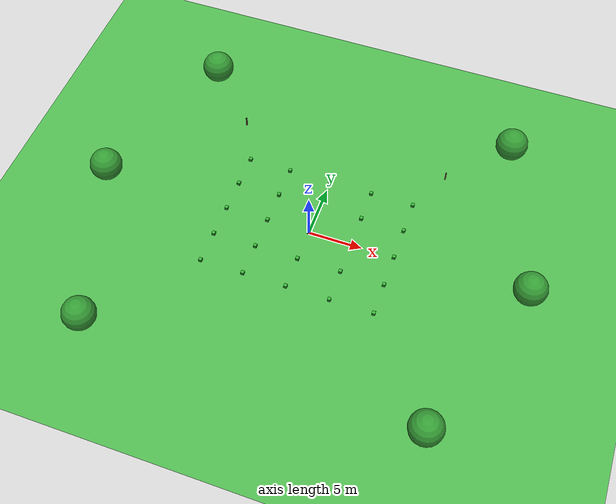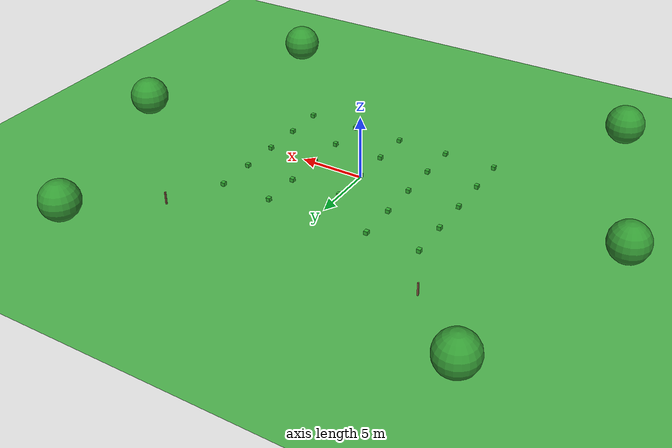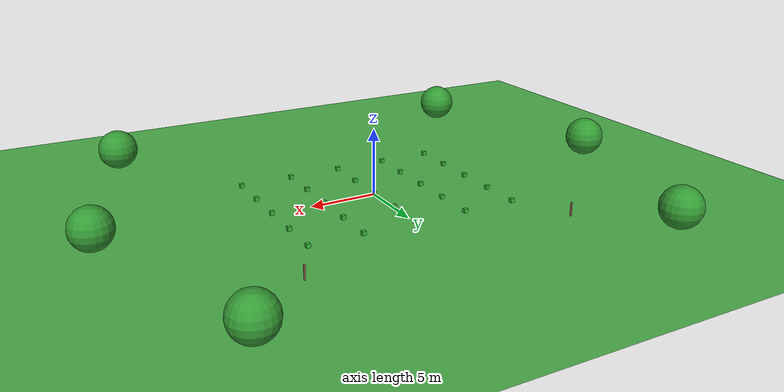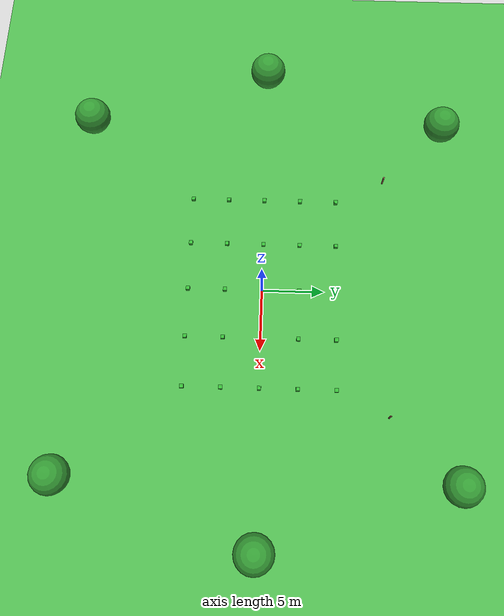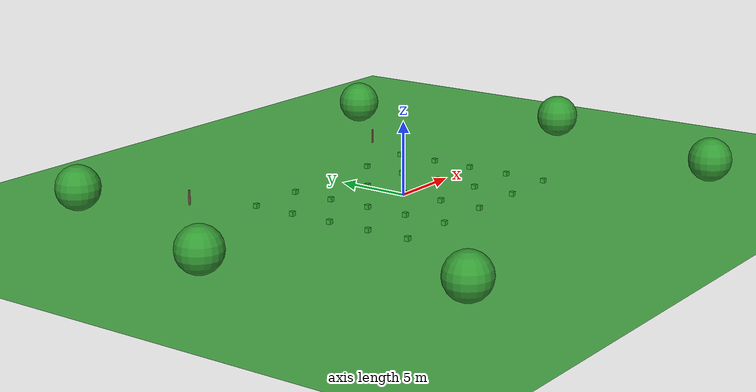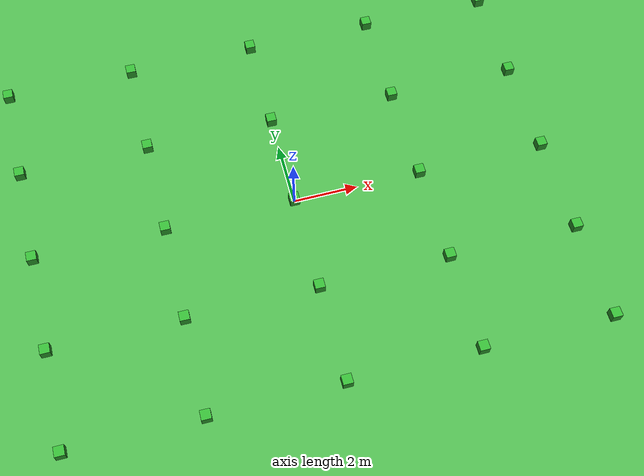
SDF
<?xml version="1.0" ?>
<sdf version="1.9">
  <world name="farm_world">
    <!-- A global light source -->
    <light type="directional" name="sun">
      <cast_shadows>true</cast_shadows>
      <pose>0 0 10 0 0 0</pose>
      <diffuse>1.0 1.0 0.95 1</diffuse>
      <specular>0.4 0.4 0.4 1</specular>
      <attenuation>
        <range>1000</range>
        <constant>0.9</constant>
        <linear>0.01</linear>
        <quadratic>0.001</quadratic>
      </attenuation>
      <direction>-0.5 0.1 -0.9</direction>
    </light>

    <!-- Additional ambient light -->
    <light type="directional" name="ambient">
      <cast_shadows>false</cast_shadows>
      <pose>0 0 5 0 0 0</pose>
      <diffuse>0.5 0.5 0.5 1</diffuse>
      <specular>0.1 0.1 0.1 1</specular>
      <direction>0 0 -1</direction>
    </light>

    <!-- Ground plane with grass texture -->
    <model name="ground_plane">
      <static>true</static>
      <link name="link">
        <collision name="collision">
          <geometry>
            <plane>
              <normal>0 0 1</normal>
              <size>100 100</size>
            </plane>
          </geometry>
        </collision>
        <visual name="visual">
          <geometry>
            <plane>
              <normal>0 0 1</normal>
              <size>100 100</size>
            </plane>
          </geometry>
          <material>
            <ambient>0.2 0.6 0.2 1</ambient>
            <diffuse>0.3 0.7 0.3 1</diffuse>
            <specular>0.1 0.1 0.1 1</specular>
          </material>
        </visual>
      </link>
    </model>

    <!-- Physics settings -->
    <gravity>0 0 -9.8066</gravity>
    <physics name="default_physics" default="0" type="ode">
      <ode>
        <solver>
          <type>quick</type>
          <iters>10</iters>
          <sor>1.3</sor>
          <use_dynamic_moi_rescaling>0</use_dynamic_moi_rescaling>
        </solver>
        <constraints>
          <cfm>0.00001</cfm>
          <erp>0.2</erp>
          <contact_max_correcting_vel>100</contact_max_correcting_vel>
          <contact_surface_layer>0.001</contact_surface_layer>
        </constraints>
      </ode>
      <max_step_size>0.004</max_step_size>
      <real_time_factor>1</real_time_factor>
      <real_time_update_rate>250</real_time_update_rate>
    </physics>

    <scene>
      <ambient>0.8 0.8 0.8 1</ambient>
      <background>0.7 0.9 1.0 1</background>
      <shadows>true</shadows>
    </scene>

    <!-- Add some farm elements -->
    <!-- Fence posts -->
    <model name="fence_post_1">
      <pose>10 10 0.5 0 0 0</pose>
      <static>true</static>
      <link name="link">
        <collision name="collision">
          <geometry>
            <box>
              <size>0.1 0.1 1.0</size>
            </box>
          </geometry>
        </collision>
        <visual name="visual">
          <geometry>
            <box>
              <size>0.1 0.1 1.0</size>
            </box>
          </geometry>
          <material>
            <ambient>0.4 0.3 0.2 1</ambient>
            <diffuse>0.6 0.4 0.3 1</diffuse>
            <specular>0.1 0.1 0.1 1</specular>
          </material>
        </visual>
      </link>
    </model>

    <model name="fence_post_2">
      <pose>-10 10 0.5 0 0 0</pose>
      <static>true</static>
      <link name="link">
        <collision name="collision">
          <geometry>
            <box>
              <size>0.1 0.1 1.0</size>
            </box>
          </geometry>
        </collision>
        <visual name="visual">
          <geometry>
            <box>
              <size>0.1 0.1 1.0</size>
            </box>
          </geometry>
          <material>
            <ambient>0.4 0.3 0.2 1</ambient>
            <diffuse>0.6 0.4 0.3 1</diffuse>
            <specular>0.1 0.1 0.1 1</specular>
          </material>
        </visual>
      </link>
    </model>

    <!-- Plant rows - 5 rows of small plants -->
    <!-- Row 1: y = 6 -->
    <model name="plant_row1_1">
      <pose>-8 6 0.15 0 0 0</pose>
      <static>true</static>
      <link name="plant">
        <collision name="plant_collision">
          <geometry>
            <box>
              <size>0.3 0.3 0.3</size>
            </box>
          </geometry>
        </collision>
        <visual name="plant_visual">
          <geometry>
            <box>
              <size>0.3 0.3 0.3</size>
            </box>
          </geometry>
          <material>
            <ambient>0.1 0.5 0.1 1</ambient>
            <diffuse>0.2 0.7 0.2 1</diffuse>
            <specular>0.1 0.2 0.1 1</specular>
          </material>
        </visual>
      </link>
    </model>

    <model name="plant_row1_2">
      <pose>-4 6 0.15 0 0 0</pose>
      <static>true</static>
      <link name="plant">
        <collision name="plant_collision">
          <geometry>
            <box>
              <size>0.3 0.3 0.3</size>
            </box>
          </geometry>
        </collision>
        <visual name="plant_visual">
          <geometry>
            <box>
              <size>0.3 0.3 0.3</size>
            </box>
          </geometry>
          <material>
            <ambient>0.1 0.5 0.1 1</ambient>
            <diffuse>0.2 0.7 0.2 1</diffuse>
            <specular>0.1 0.2 0.1 1</specular>
          </material>
        </visual>
      </link>
    </model>

    <model name="plant_row1_3">
      <pose>0 6 0.15 0 0 0</pose>
      <static>true</static>
      <link name="plant">
        <collision name="plant_collision">
          <geometry>
            <box>
              <size>0.3 0.3 0.3</size>
            </box>
          </geometry>
        </collision>
        <visual name="plant_visual">
          <geometry>
            <box>
              <size>0.3 0.3 0.3</size>
            </box>
          </geometry>
          <material>
            <ambient>0.1 0.5 0.1 1</ambient>
            <diffuse>0.2 0.7 0.2 1</diffuse>
            <specular>0.1 0.2 0.1 1</specular>
          </material>
        </visual>
      </link>
    </model>

    <model name="plant_row1_4">
      <pose>4 6 0.15 0 0 0</pose>
      <static>true</static>
      <link name="plant">
        <collision name="plant_collision">
          <geometry>
            <box>
              <size>0.3 0.3 0.3</size>
            </box>
          </geometry>
        </collision>
        <visual name="plant_visual">
          <geometry>
            <box>
              <size>0.3 0.3 0.3</size>
            </box>
          </geometry>
          <material>
            <ambient>0.1 0.5 0.1 1</ambient>
            <diffuse>0.2 0.7 0.2 1</diffuse>
            <specular>0.1 0.2 0.1 1</specular>
          </material>
        </visual>
      </link>
    </model>

    <model name="plant_row1_5">
      <pose>8 6 0.15 0 0 0</pose>
      <static>true</static>
      <link name="plant">
        <collision name="plant_collision">
          <geometry>
            <box>
              <size>0.3 0.3 0.3</size>
            </box>
          </geometry>
        </collision>
        <visual name="plant_visual">
          <geometry>
            <box>
              <size>0.3 0.3 0.3</size>
            </box>
          </geometry>
          <material>
            <ambient>0.1 0.5 0.1 1</ambient>
            <diffuse>0.2 0.7 0.2 1</diffuse>
            <specular>0.1 0.2 0.1 1</specular>
          </material>
        </visual>
      </link>
    </model>

    <!-- Row 2: y = 3 -->
    <model name="plant_row2_1">
      <pose>-8 3 0.15 0 0 0</pose>
      <static>true</static>
      <link name="plant">
        <collision name="plant_collision">
          <geometry>
            <box>
              <size>0.3 0.3 0.3</size>
            </box>
          </geometry>
        </collision>
        <visual name="plant_visual">
          <geometry>
            <box>
              <size>0.3 0.3 0.3</size>
            </box>
          </geometry>
          <material>
            <ambient>0.1 0.5 0.1 1</ambient>
            <diffuse>0.2 0.7 0.2 1</diffuse>
            <specular>0.1 0.2 0.1 1</specular>
          </material>
        </visual>
      </link>
    </model>

    <model name="plant_row2_2">
      <pose>-4 3 0.15 0 0 0</pose>
      <static>true</static>
      <link name="plant">
        <collision name="plant_collision">
          <geometry>
            <box>
              <size>0.3 0.3 0.3</size>
            </box>
          </geometry>
        </collision>
        <visual name="plant_visual">
          <geometry>
            <box>
              <size>0.3 0.3 0.3</size>
            </box>
          </geometry>
          <material>
            <ambient>0.1 0.5 0.1 1</ambient>
            <diffuse>0.2 0.7 0.2 1</diffuse>
            <specular>0.1 0.2 0.1 1</specular>
          </material>
        </visual>
      </link>
    </model>

    <model name="plant_row2_3">
      <pose>0 3 0.15 0 0 0</pose>
      <static>true</static>
      <link name="plant">
        <collision name="plant_collision">
          <geometry>
            <box>
              <size>0.3 0.3 0.3</size>
            </box>
          </geometry>
        </collision>
        <visual name="plant_visual">
          <geometry>
            <box>
              <size>0.3 0.3 0.3</size>
            </box>
          </geometry>
          <material>
            <ambient>0.1 0.5 0.1 1</ambient>
            <diffuse>0.2 0.7 0.2 1</diffuse>
            <specular>0.1 0.2 0.1 1</specular>
          </material>
        </visual>
      </link>
    </model>

    <model name="plant_row2_4">
      <pose>4 3 0.15 0 0 0</pose>
      <static>true</static>
      <link name="plant">
        <collision name="plant_collision">
          <geometry>
            <box>
              <size>0.3 0.3 0.3</size>
            </box>
          </geometry>
        </collision>
        <visual name="plant_visual">
          <geometry>
            <box>
              <size>0.3 0.3 0.3</size>
            </box>
          </geometry>
          <material>
            <ambient>0.1 0.5 0.1 1</ambient>
            <diffuse>0.2 0.7 0.2 1</diffuse>
            <specular>0.1 0.2 0.1 1</specular>
          </material>
        </visual>
      </link>
    </model>

    <model name="plant_row2_5">
      <pose>8 3 0.15 0 0 0</pose>
      <static>true</static>
      <link name="plant">
        <collision name="plant_collision">
          <geometry>
            <box>
              <size>0.3 0.3 0.3</size>
            </box>
          </geometry>
        </collision>
        <visual name="plant_visual">
          <geometry>
            <box>
              <size>0.3 0.3 0.3</size>
            </box>
          </geometry>
          <material>
            <ambient>0.1 0.5 0.1 1</ambient>
            <diffuse>0.2 0.7 0.2 1</diffuse>
            <specular>0.1 0.2 0.1 1</specular>
          </material>
        </visual>
      </link>
    </model>

    <!-- Row 3: y = 0 -->
    <model name="plant_row3_1">
      <pose>-8 0 0.15 0 0 0</pose>
      <static>true</static>
      <link name="plant">
        <collision name="plant_collision">
          <geometry>
            <box>
              <size>0.3 0.3 0.3</size>
            </box>
          </geometry>
        </collision>
        <visual name="plant_visual">
          <geometry>
            <box>
              <size>0.3 0.3 0.3</size>
            </box>
          </geometry>
          <material>
            <ambient>0.1 0.5 0.1 1</ambient>
            <diffuse>0.2 0.7 0.2 1</diffuse>
            <specular>0.1 0.2 0.1 1</specular>
          </material>
        </visual>
      </link>
    </model>

    <model name="plant_row3_2">
      <pose>-4 0 0.15 0 0 0</pose>
      <static>true</static>
      <link name="plant">
        <collision name="plant_collision">
          <geometry>
            <box>
              <size>0.3 0.3 0.3</size>
            </box>
          </geometry>
        </collision>
        <visual name="plant_visual">
          <geometry>
            <box>
              <size>0.3 0.3 0.3</size>
            </box>
          </geometry>
          <material>
            <ambient>0.1 0.5 0.1 1</ambient>
            <diffuse>0.2 0.7 0.2 1</diffuse>
            <specular>0.1 0.2 0.1 1</specular>
          </material>
        </visual>
      </link>
    </model>

    <model name="plant_row3_3">
      <pose>0 0 0.15 0 0 0</pose>
      <static>true</static>
      <link name="plant">
        <collision name="plant_collision">
          <geometry>
            <box>
              <size>0.3 0.3 0.3</size>
            </box>
          </geometry>
        </collision>
        <visual name="plant_visual">
          <geometry>
            <box>
              <size>0.3 0.3 0.3</size>
            </box>
          </geometry>
          <material>
            <ambient>0.1 0.5 0.1 1</ambient>
            <diffuse>0.2 0.7 0.2 1</diffuse>
            <specular>0.1 0.2 0.1 1</specular>
          </material>
        </visual>
      </link>
    </model>

    <model name="plant_row3_4">
      <pose>4 0 0.15 0 0 0</pose>
      <static>true</static>
      <link name="plant">
        <collision name="plant_collision">
          <geometry>
            <box>
              <size>0.3 0.3 0.3</size>
            </box>
          </geometry>
        </collision>
        <visual name="plant_visual">
          <geometry>
            <box>
              <size>0.3 0.3 0.3</size>
            </box>
          </geometry>
          <material>
            <ambient>0.1 0.5 0.1 1</ambient>
            <diffuse>0.2 0.7 0.2 1</diffuse>
            <specular>0.1 0.2 0.1 1</specular>
          </material>
        </visual>
      </link>
    </model>

    <model name="plant_row3_5">
      <pose>8 0 0.15 0 0 0</pose>
      <static>true</static>
      <link name="plant">
        <collision name="plant_collision">
          <geometry>
            <box>
              <size>0.3 0.3 0.3</size>
            </box>
          </geometry>
        </collision>
        <visual name="plant_visual">
          <geometry>
            <box>
              <size>0.3 0.3 0.3</size>
            </box>
          </geometry>
          <material>
            <ambient>0.1 0.5 0.1 1</ambient>
            <diffuse>0.2 0.7 0.2 1</diffuse>
            <specular>0.1 0.2 0.1 1</specular>
          </material>
        </visual>
      </link>
    </model>

    <!-- Row 4: y = -3 -->
    <model name="plant_row4_1">
      <pose>-8 -3 0.15 0 0 0</pose>
      <static>true</static>
      <link name="plant">
        <collision name="plant_collision">
          <geometry>
            <box>
              <size>0.3 0.3 0.3</size>
            </box>
          </geometry>
        </collision>
        <visual name="plant_visual">
          <geometry>
            <box>
              <size>0.3 0.3 0.3</size>
            </box>
          </geometry>
          <material>
            <ambient>0.1 0.5 0.1 1</ambient>
            <diffuse>0.2 0.7 0.2 1</diffuse>
            <specular>0.1 0.2 0.1 1</specular>
          </material>
        </visual>
      </link>
    </model>

    <model name="plant_row4_2">
      <pose>-4 -3 0.15 0 0 0</pose>
      <static>true</static>
      <link name="plant">
        <collision name="plant_collision">
          <geometry>
            <box>
              <size>0.3 0.3 0.3</size>
            </box>
          </geometry>
        </collision>
        <visual name="plant_visual">
          <geometry>
            <box>
              <size>0.3 0.3 0.3</size>
            </box>
          </geometry>
          <material>
            <ambient>0.1 0.5 0.1 1</ambient>
            <diffuse>0.2 0.7 0.2 1</diffuse>
            <specular>0.1 0.2 0.1 1</specular>
          </material>
        </visual>
      </link>
    </model>

    <model name="plant_row4_3">
      <pose>0 -3 0.15 0 0 0</pose>
      <static>true</static>
      <link name="plant">
        <collision name="plant_collision">
          <geometry>
            <box>
              <size>0.3 0.3 0.3</size>
            </box>
          </geometry>
        </collision>
        <visual name="plant_visual">
          <geometry>
            <box>
              <size>0.3 0.3 0.3</size>
            </box>
          </geometry>
          <material>
            <ambient>0.1 0.5 0.1 1</ambient>
            <diffuse>0.2 0.7 0.2 1</diffuse>
            <specular>0.1 0.2 0.1 1</specular>
          </material>
        </visual>
      </link>
    </model>

    <model name="plant_row4_4">
      <pose>4 -3 0.15 0 0 0</pose>
      <static>true</static>
      <link name="plant">
        <collision name="plant_collision">
          <geometry>
            <box>
              <size>0.3 0.3 0.3</size>
            </box>
          </geometry>
        </collision>
        <visual name="plant_visual">
          <geometry>
            <box>
              <size>0.3 0.3 0.3</size>
            </box>
          </geometry>
          <material>
            <ambient>0.1 0.5 0.1 1</ambient>
            <diffuse>0.2 0.7 0.2 1</diffuse>
            <specular>0.1 0.2 0.1 1</specular>
          </material>
        </visual>
      </link>
    </model>

    <model name="plant_row4_5">
      <pose>8 -3 0.15 0 0 0</pose>
      <static>true</static>
      <link name="plant">
        <collision name="plant_collision">
          <geometry>
            <box>
              <size>0.3 0.3 0.3</size>
            </box>
          </geometry>
        </collision>
        <visual name="plant_visual">
          <geometry>
            <box>
              <size>0.3 0.3 0.3</size>
            </box>
          </geometry>
          <material>
            <ambient>0.1 0.5 0.1 1</ambient>
            <diffuse>0.2 0.7 0.2 1</diffuse>
            <specular>0.1 0.2 0.1 1</specular>
          </material>
        </visual>
      </link>
    </model>

    <!-- Row 5: y = -6 -->
    <model name="plant_row5_1">
      <pose>-8 -6 0.15 0 0 0</pose>
      <static>true</static>
      <link name="plant">
        <collision name="plant_collision">
          <geometry>
            <box>
              <size>0.3 0.3 0.3</size>
            </box>
          </geometry>
        </collision>
        <visual name="plant_visual">
          <geometry>
            <box>
              <size>0.3 0.3 0.3</size>
            </box>
          </geometry>
          <material>
            <ambient>0.1 0.5 0.1 1</ambient>
            <diffuse>0.2 0.7 0.2 1</diffuse>
            <specular>0.1 0.2 0.1 1</specular>
          </material>
        </visual>
      </link>
    </model>

    <model name="plant_row5_2">
      <pose>-4 -6 0.15 0 0 0</pose>
      <static>true</static>
      <link name="plant">
        <collision name="plant_collision">
          <geometry>
            <box>
              <size>0.3 0.3 0.3</size>
            </box>
          </geometry>
        </collision>
        <visual name="plant_visual">
          <geometry>
            <box>
              <size>0.3 0.3 0.3</size>
            </box>
          </geometry>
          <material>
            <ambient>0.1 0.5 0.1 1</ambient>
            <diffuse>0.2 0.7 0.2 1</diffuse>
            <specular>0.1 0.2 0.1 1</specular>
          </material>
        </visual>
      </link>
    </model>

    <model name="plant_row5_3">
      <pose>0 -6 0.15 0 0 0</pose>
      <static>true</static>
      <link name="plant">
        <collision name="plant_collision">
          <geometry>
            <box>
              <size>0.3 0.3 0.3</size>
            </box>
          </geometry>
        </collision>
        <visual name="plant_visual">
          <geometry>
            <box>
              <size>0.3 0.3 0.3</size>
            </box>
          </geometry>
          <material>
            <ambient>0.1 0.5 0.1 1</ambient>
            <diffuse>0.2 0.7 0.2 1</diffuse>
            <specular>0.1 0.2 0.1 1</specular>
          </material>
        </visual>
      </link>
    </model>

    <model name="plant_row5_4">
      <pose>4 -6 0.15 0 0 0</pose>
      <static>true</static>
      <link name="plant">
        <collision name="plant_collision">
          <geometry>
            <box>
              <size>0.3 0.3 0.3</size>
            </box>
          </geometry>
        </collision>
        <visual name="plant_visual">
          <geometry>
            <box>
              <size>0.3 0.3 0.3</size>
            </box>
          </geometry>
          <material>
            <ambient>0.1 0.5 0.1 1</ambient>
            <diffuse>0.2 0.7 0.2 1</diffuse>
            <specular>0.1 0.2 0.1 1</specular>
          </material>
        </visual>
      </link>
    </model>

    <model name="plant_row5_5">
      <pose>8 -6 0.15 0 0 0</pose>
      <static>true</static>
      <link name="plant">
        <collision name="plant_collision">
          <geometry>
            <box>
              <size>0.3 0.3 0.3</size>
            </box>
          </geometry>
        </collision>
        <visual name="plant_visual">
          <geometry>
            <box>
              <size>0.3 0.3 0.3</size>
            </box>
          </geometry>
          <material>
            <ambient>0.1 0.5 0.1 1</ambient>
            <diffuse>0.2 0.7 0.2 1</diffuse>
            <specular>0.1 0.2 0.1 1</specular>
          </material>
        </visual>
      </link>
    </model>

    <!-- Trees around the farm -->
    <model name="tree_1">
      <pose>15 15 0.5 0 0 0</pose>
      <static>true</static>
      <link name="trunk">
        <collision name="collision">
          <geometry>
            <cylinder>
              <radius>0.2</radius>
              <length>1.0</length>
            </cylinder>
          </geometry>
        </collision>
        <visual name="visual">
          <geometry>
            <cylinder>
              <radius>0.2</radius>
              <length>1.0</length>
            </cylinder>
          </geometry>
          <material>
            <ambient>0.4 0.3 0.2 1</ambient>
            <diffuse>0.6 0.4 0.3 1</diffuse>
            <specular>0.1 0.1 0.1 1</specular>
          </material>
        </visual>
      </link>
      <link name="foliage">
        <pose>0 0 1.0 0 0 0</pose>
        <collision name="collision">
          <geometry>
            <sphere>
              <radius>1.5</radius>
            </sphere>
          </geometry>
        </collision>
        <visual name="visual">
          <geometry>
            <sphere>
              <radius>1.5</radius>
            </sphere>
          </geometry>
          <material>
            <ambient>0.1 0.4 0.1 1</ambient>
            <diffuse>0.2 0.6 0.2 1</diffuse>
            <specular>0.1 0.2 0.1 1</specular>
          </material>
        </visual>
      </link>
      <joint name="trunk_foliage_joint" type="fixed">
        <parent>trunk</parent>
        <child>foliage</child>
      </joint>
    </model>

    <model name="tree_2">
      <pose>-15 15 0.5 0 0 0</pose>
      <static>true</static>
      <link name="trunk">
        <collision name="collision">
          <geometry>
            <cylinder>
              <radius>0.2</radius>
              <length>1.0</length>
            </cylinder>
          </geometry>
        </collision>
        <visual name="visual">
          <geometry>
            <cylinder>
              <radius>0.2</radius>
              <length>1.0</length>
            </cylinder>
          </geometry>
          <material>
            <ambient>0.4 0.3 0.2 1</ambient>
            <diffuse>0.6 0.4 0.3 1</diffuse>
            <specular>0.1 0.1 0.1 1</specular>
          </material>
        </visual>
      </link>
      <link name="foliage">
        <pose>0 0 1.0 0 0 0</pose>
        <collision name="collision">
          <geometry>
            <sphere>
              <radius>1.5</radius>
            </sphere>
          </geometry>
        </collision>
        <visual name="visual">
          <geometry>
            <sphere>
              <radius>1.5</radius>
            </sphere>
          </geometry>
          <material>
            <ambient>0.1 0.4 0.1 1</ambient>
            <diffuse>0.2 0.6 0.2 1</diffuse>
            <specular>0.1 0.2 0.1 1</specular>
          </material>
        </visual>
      </link>
      <joint name="trunk_foliage_joint" type="fixed">
        <parent>trunk</parent>
        <child>foliage</child>
      </joint>
    </model>

    <model name="tree_3">
      <pose>15 -15 0.5 0 0 0</pose>
      <static>true</static>
      <link name="trunk">
        <collision name="collision">
          <geometry>
            <cylinder>
              <radius>0.2</radius>
              <length>1.0</length>
            </cylinder>
          </geometry>
        </collision>
        <visual name="visual">
          <geometry>
            <cylinder>
              <radius>0.2</radius>
              <length>1.0</length>
            </cylinder>
          </geometry>
          <material>
            <ambient>0.4 0.3 0.2 1</ambient>
            <diffuse>0.6 0.4 0.3 1</diffuse>
            <specular>0.1 0.1 0.1 1</specular>
          </material>
        </visual>
      </link>
      <link name="foliage">
        <pose>0 0 1.0 0 0 0</pose>
        <collision name="collision">
          <geometry>
            <sphere>
              <radius>1.5</radius>
            </sphere>
          </geometry>
        </collision>
        <visual name="visual">
          <geometry>
            <sphere>
              <radius>1.5</radius>
            </sphere>
          </geometry>
          <material>
            <ambient>0.1 0.4 0.1 1</ambient>
            <diffuse>0.2 0.6 0.2 1</diffuse>
            <specular>0.1 0.2 0.1 1</specular>
          </material>
        </visual>
      </link>
      <joint name="trunk_foliage_joint" type="fixed">
        <parent>trunk</parent>
        <child>foliage</child>
      </joint>
    </model>

    <model name="tree_4">
      <pose>-15 -15 0.5 0 0 0</pose>
      <static>true</static>
      <link name="trunk">
        <collision name="collision">
          <geometry>
            <cylinder>
              <radius>0.2</radius>
              <length>1.0</length>
            </cylinder>
          </geometry>
        </collision>
        <visual name="visual">
          <geometry>
            <cylinder>
              <radius>0.2</radius>
              <length>1.0</length>
            </cylinder>
          </geometry>
          <material>
            <ambient>0.4 0.3 0.2 1</ambient>
            <diffuse>0.6 0.4 0.3 1</diffuse>
            <specular>0.1 0.1 0.1 1</specular>
          </material>
        </visual>
      </link>
      <link name="foliage">
        <pose>0 0 1.0 0 0 0</pose>
        <collision name="collision">
          <geometry>
            <sphere>
              <radius>1.5</radius>
            </sphere>
          </geometry>
        </collision>
        <visual name="visual">
          <geometry>
            <sphere>
              <radius>1.5</radius>
            </sphere>
          </geometry>
          <material>
            <ambient>0.1 0.4 0.1 1</ambient>
            <diffuse>0.2 0.6 0.2 1</diffuse>
            <specular>0.1 0.2 0.1 1</specular>
          </material>
        </visual>
      </link>
      <joint name="trunk_foliage_joint" type="fixed">
        <parent>trunk</parent>
        <child>foliage</child>
      </joint>
    </model>

    <model name="tree_5">
      <pose>20 0 0.5 0 0 0</pose>
      <static>true</static>
      <link name="trunk">
        <collision name="collision">
          <geometry>
            <cylinder>
              <radius>0.2</radius>
              <length>1.0</length>
            </cylinder>
          </geometry>
        </collision>
        <visual name="visual">
          <geometry>
            <cylinder>
              <radius>0.2</radius>
              <length>1.0</length>
            </cylinder>
          </geometry>
          <material>
            <ambient>0.4 0.3 0.2 1</ambient>
            <diffuse>0.6 0.4 0.3 1</diffuse>
            <specular>0.1 0.1 0.1 1</specular>
          </material>
        </visual>
      </link>
      <link name="foliage">
        <pose>0 0 1.0 0 0 0</pose>
        <collision name="collision">
          <geometry>
            <sphere>
              <radius>1.5</radius>
            </sphere>
          </geometry>
        </collision>
        <visual name="visual">
          <geometry>
            <sphere>
              <radius>1.5</radius>
            </sphere>
          </geometry>
          <material>
            <ambient>0.1 0.4 0.1 1</ambient>
            <diffuse>0.2 0.6 0.2 1</diffuse>
            <specular>0.1 0.2 0.1 1</specular>
          </material>
        </visual>
      </link>
      <joint name="trunk_foliage_joint" type="fixed">
        <parent>trunk</parent>
        <child>foliage</child>
      </joint>
    </model>

    <model name="tree_6">
      <pose>-20 0 0.5 0 0 0</pose>
      <static>true</static>
      <link name="trunk">
        <collision name="collision">
          <geometry>
            <cylinder>
              <radius>0.2</radius>
              <length>1.0</length>
            </cylinder>
          </geometry>
        </collision>
        <visual name="visual">
          <geometry>
            <cylinder>
              <radius>0.2</radius>
              <length>1.0</length>
            </cylinder>
          </geometry>
          <material>
            <ambient>0.4 0.3 0.2 1</ambient>
            <diffuse>0.6 0.4 0.3 1</diffuse>
            <specular>0.1 0.1 0.1 1</specular>
          </material>
        </visual>
      </link>
      <link name="foliage">
        <pose>0 0 1.0 0 0 0</pose>
        <collision name="collision">
          <geometry>
            <sphere>
              <radius>1.5</radius>
            </sphere>
          </geometry>
        </collision>
        <visual name="visual">
          <geometry>
            <sphere>
              <radius>1.5</radius>
            </sphere>
          </geometry>
          <material>
            <ambient>0.1 0.4 0.1 1</ambient>
            <diffuse>0.2 0.6 0.2 1</diffuse>
            <specular>0.1 0.2 0.1 1</specular>
          </material>
        </visual>
      </link>
      <joint name="trunk_foliage_joint" type="fixed">
        <parent>trunk</parent>
        <child>foliage</child>
      </joint>
    </model>

  </world>
</sdf>
